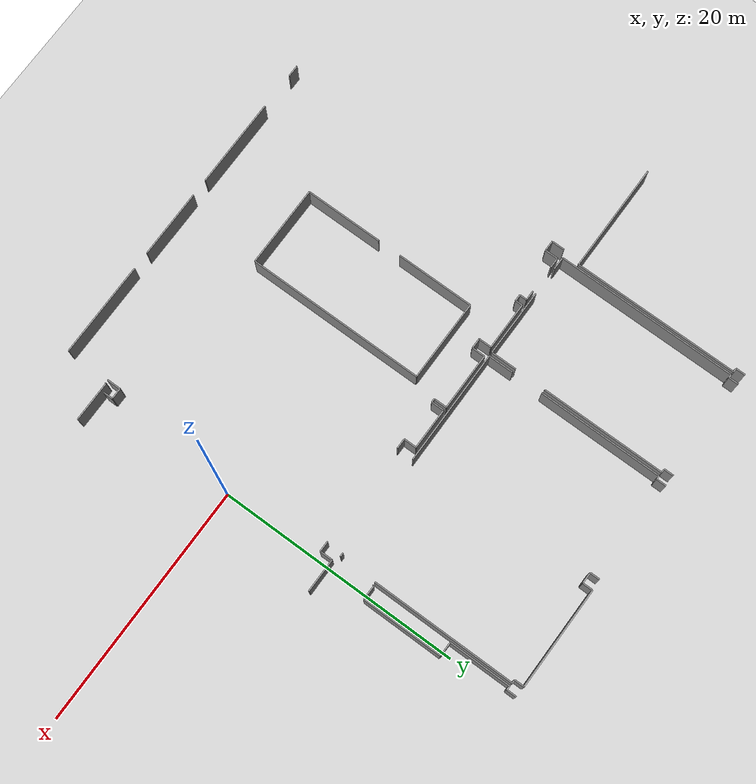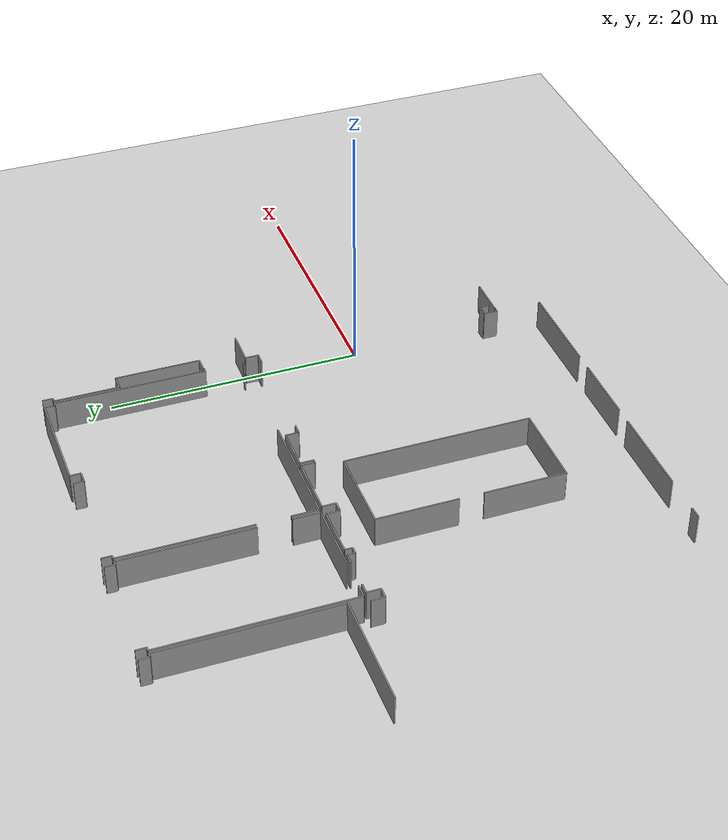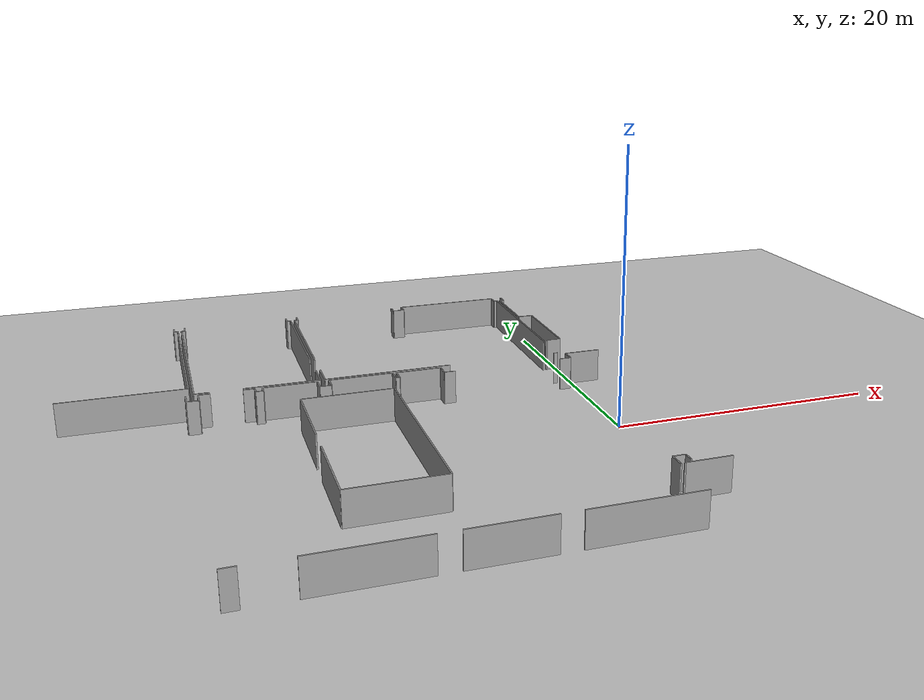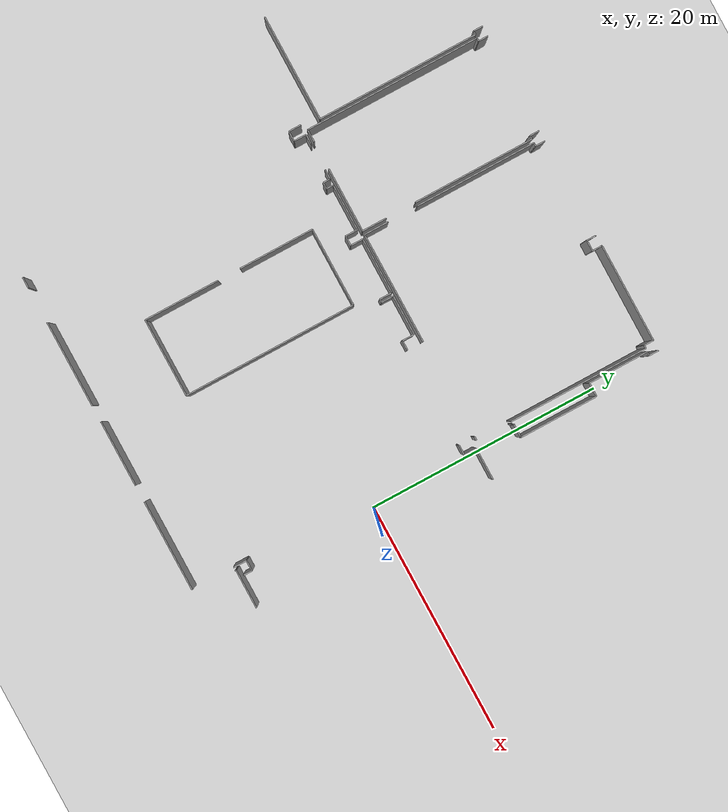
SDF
<sdf version="1.6">
 <world name="default">
  <model name="ground_plane">
   <static>1</static>
   <link name="link">
    <collision name="collision">
     <geometry><plane><normal>0 0 1</normal><size>100 100</size></plane></geometry>
     <surface><friction><ode><mu>100</mu><mu2>50</mu2></ode></friction></surface>
    </collision>
    <visual name="visual">
     <cast_shadows>0</cast_shadows>
     <geometry><plane><normal>0 0 1</normal><size>100 100</size></plane></geometry>
     <material>
      <script><uri>file://media/materials/scripts/gazebo.material</uri><name>Gazebo/Grey</name></script>
     </material>
    </visual>
   </link>
  </model>
  <model name="50045366">
   <static>1</static>
   <link name="Wall_24">
    <collision name="Wall_24_Collision">
     <geometry><box><size>0.805781712413 0.1 2.5</size></box></geometry>
     <pose>0.402890856207 0 1.25 0 0 0</pose>
    </collision>
    <visual name="Wall_24_Visual">
     <pose>0.402890856207 0 1.25 0 0 0</pose>
     <geometry><box><size>0.805781712413 0.1 2.5</size></box></geometry>
     <material>
      <script><uri>file://media/materials/scripts/gazebo.material</uri><name>Gazebo/Grey</name></script>
      <ambient>1 1 1 1</ambient>
     </material>
    </visual>
    <pose>25.0725889421 -0.0480115837472 0 0 0 -1.57079632679</pose>
   </link>
   <link name="Wall_25">
    <collision name="Wall_25_Collision">
     <geometry><box><size>0.3123293239 0.1 2.5</size></box></geometry>
     <pose>0.15616466195 0 1.25 0 0 0</pose>
    </collision>
    <visual name="Wall_25_Visual">
     <pose>0.15616466195 0 1.25 0 0 0</pose>
     <geometry><box><size>0.3123293239 0.1 2.5</size></box></geometry>
     <material>
      <script><uri>file://media/materials/scripts/gazebo.material</uri><name>Gazebo/Grey</name></script>
      <ambient>1 1 1 1</ambient>
     </material>
    </visual>
    <pose>25.0725889421 -0.85379329616 0 0 0 0.0</pose>
   </link>
   <link name="Wall_26">
    <collision name="Wall_26_Collision">
     <geometry><box><size>13.7253432574 0.1 2.5</size></box></geometry>
     <pose>6.86267162871 0 1.25 0 0 0</pose>
    </collision>
    <visual name="Wall_26_Visual">
     <pose>6.86267162871 0 1.25 0 0 0</pose>
     <geometry><box><size>13.7253432574 0.1 2.5</size></box></geometry>
     <material>
      <script><uri>file://media/materials/scripts/gazebo.material</uri><name>Gazebo/Grey</name></script>
      <ambient>1 1 1 1</ambient>
     </material>
    </visual>
    <pose>25.384918266 -0.85379329616 0 0 0 -1.57079632679</pose>
   </link>
   <link name="Wall_27">
    <collision name="Wall_27_Collision">
     <geometry><box><size>8.99785345036 0.1 2.5</size></box></geometry>
     <pose>4.49892672518 0 1.25 0 0 0</pose>
    </collision>
    <visual name="Wall_27_Visual">
     <pose>4.49892672518 0 1.25 0 0 0</pose>
     <geometry><box><size>8.99785345036 0.1 2.5</size></box></geometry>
     <material>
      <script><uri>file://media/materials/scripts/gazebo.material</uri><name>Gazebo/Grey</name></script>
      <ambient>1 1 1 1</ambient>
     </material>
    </visual>
    <pose>25.384918266 -14.5791365536 0 0 0 3.14159265359</pose>
   </link>
   <link name="Wall_46">
    <collision name="Wall_46_Collision">
     <geometry><box><size>1.05968424128 0.1 2.5</size></box></geometry>
     <pose>0.529842120639 0 1.25 0 0 0</pose>
    </collision>
    <visual name="Wall_46_Visual">
     <pose>0.529842120639 0 1.25 0 0 0</pose>
     <geometry><box><size>1.05968424128 0.1 2.5</size></box></geometry>
     <material>
      <script><uri>file://media/materials/scripts/gazebo.material</uri><name>Gazebo/Grey</name></script>
      <ambient>1 1 1 1</ambient>
     </material>
    </visual>
    <pose>25.0827501238 -16.1087754506 0 0 0 -1.57079632679</pose>
   </link>
   <link name="Wall_47">
    <collision name="Wall_47_Collision">
     <geometry><box><size>0.851125985952 0.1 2.5</size></box></geometry>
     <pose>0.425562992976 0 1.25 0 0 0</pose>
    </collision>
    <visual name="Wall_47_Visual">
     <pose>0.425562992976 0 1.25 0 0 0</pose>
     <geometry><box><size>0.851125985952 0.1 2.5</size></box></geometry>
     <material>
      <script><uri>file://media/materials/scripts/gazebo.material</uri><name>Gazebo/Grey</name></script>
      <ambient>1 1 1 1</ambient>
     </material>
    </visual>
    <pose>25.0827501238 -17.1684596919 0 0 0 0.0</pose>
   </link>
   <link name="Wall_48">
    <collision name="Wall_48_Collision">
     <geometry><box><size>1.06527289124 0.1 2.5</size></box></geometry>
     <pose>0.532636445619 0 1.25 0 0 0</pose>
    </collision>
    <visual name="Wall_48_Visual">
     <pose>0.532636445619 0 1.25 0 0 0</pose>
     <geometry><box><size>1.06527289124 0.1 2.5</size></box></geometry>
     <material>
      <script><uri>file://media/materials/scripts/gazebo.material</uri><name>Gazebo/Grey</name></script>
      <ambient>1 1 1 1</ambient>
     </material>
    </visual>
    <pose>25.9338761098 -17.1684596919 0 0 0 1.57079632679</pose>
   </link>
   <link name="Wall_49">
    <collision name="Wall_49_Collision">
     <geometry><box><size>0.836900331509 0.1 2.5</size></box></geometry>
     <pose>0.418450165754 0 1.25 0 0 0</pose>
    </collision>
    <visual name="Wall_49_Visual">
     <pose>0.418450165754 0 1.25 0 0 0</pose>
     <geometry><box><size>0.836900331509 0.1 2.5</size></box></geometry>
     <material>
      <script><uri>file://media/materials/scripts/gazebo.material</uri><name>Gazebo/Grey</name></script>
      <ambient>1 1 1 1</ambient>
     </material>
    </visual>
    <pose>25.9338761098 -16.1031868006 0 0 0 0.0</pose>
   </link>
   <link name="Wall_50">
    <collision name="Wall_50_Collision">
     <geometry><box><size>0.811751406689 0.1 2.5</size></box></geometry>
     <pose>0.405875703344 0 1.25 0 0 0</pose>
    </collision>
    <visual name="Wall_50_Visual">
     <pose>0.405875703344 0 1.25 0 0 0</pose>
     <geometry><box><size>0.811751406689 0.1 2.5</size></box></geometry>
     <material>
      <script><uri>file://media/materials/scripts/gazebo.material</uri><name>Gazebo/Grey</name></script>
      <ambient>1 1 1 1</ambient>
     </material>
    </visual>
    <pose>29.0405304137 -16.1031868006 0 0 0 0.0</pose>
   </link>
   <link name="Wall_51">
    <collision name="Wall_51_Collision">
     <geometry><box><size>0.610941052444 0.1 2.5</size></box></geometry>
     <pose>0.305470526222 0 1.25 0 0 0</pose>
    </collision>
    <visual name="Wall_51_Visual">
     <pose>0.305470526222 0 1.25 0 0 0</pose>
     <geometry><box><size>0.610941052444 0.1 2.5</size></box></geometry>
     <material>
      <script><uri>file://media/materials/scripts/gazebo.material</uri><name>Gazebo/Grey</name></script>
      <ambient>1 1 1 1</ambient>
     </material>
    </visual>
    <pose>29.8522818204 -16.1031868006 0 0 0 -1.57079632679</pose>
   </link>
   <link name="Wall_52">
    <collision name="Wall_52_Collision">
     <geometry><box><size>0.534859204125 0.1 2.5</size></box></geometry>
     <pose>0.267429602063 0 1.25 0 0 0</pose>
    </collision>
    <visual name="Wall_52_Visual">
     <pose>0.267429602063 0 1.25 0 0 0</pose>
     <geometry><box><size>0.534859204125 0.1 2.5</size></box></geometry>
     <material>
      <script><uri>file://media/materials/scripts/gazebo.material</uri><name>Gazebo/Grey</name></script>
      <ambient>1 1 1 1</ambient>
     </material>
    </visual>
    <pose>29.8522818204 -16.7141278531 0 0 0 0.0</pose>
   </link>
   <link name="Wall_53">
    <collision name="Wall_53_Collision">
     <geometry><box><size>0.596842412773 0.1 2.5</size></box></geometry>
     <pose>0.298421206386 0 1.25 0 0 0</pose>
    </collision>
    <visual name="Wall_53_Visual">
     <pose>0.298421206386 0 1.25 0 0 0</pose>
     <geometry><box><size>0.596842412773 0.1 2.5</size></box></geometry>
     <material>
      <script><uri>file://media/materials/scripts/gazebo.material</uri><name>Gazebo/Grey</name></script>
      <ambient>1 1 1 1</ambient>
     </material>
    </visual>
    <pose>30.3871410245 -16.7141278531 0 0 0 1.57079632679</pose>
   </link>
   <link name="Wall_54">
    <collision name="Wall_54_Collision">
     <geometry><box><size>3.93923613316 0.1 2.5</size></box></geometry>
     <pose>1.96961806658 0 1.25 0 0 0</pose>
    </collision>
    <visual name="Wall_54_Visual">
     <pose>1.96961806658 0 1.25 0 0 0</pose>
     <geometry><box><size>3.93923613316 0.1 2.5</size></box></geometry>
     <material>
      <script><uri>file://media/materials/scripts/gazebo.material</uri><name>Gazebo/Grey</name></script>
      <ambient>1 1 1 1</ambient>
     </material>
    </visual>
    <pose>30.3871410245 -16.1172854403 0 0 0 0.0</pose>
   </link>
   <link name="Wall_55">
    <collision name="Wall_55_Collision">
     <geometry><box><size>1.05523872426 0.1 2.5</size></box></geometry>
     <pose>0.527619362132 0 1.25 0 0 0</pose>
    </collision>
    <visual name="Wall_55_Visual">
     <pose>0.527619362132 0 1.25 0 0 0</pose>
     <geometry><box><size>1.05523872426 0.1 2.5</size></box></geometry>
     <material>
      <script><uri>file://media/materials/scripts/gazebo.material</uri><name>Gazebo/Grey</name></script>
      <ambient>1 1 1 1</ambient>
     </material>
    </visual>
    <pose>34.3263771577 -16.1172854403 0 0 0 -1.57079632679</pose>
   </link>
   <link name="Wall_56">
    <collision name="Wall_56_Collision">
     <geometry><box><size>0.83563018379 0.1 2.5</size></box></geometry>
     <pose>0.417815091895 0 1.25 0 0 0</pose>
    </collision>
    <visual name="Wall_56_Visual">
     <pose>0.417815091895 0 1.25 0 0 0</pose>
     <geometry><box><size>0.83563018379 0.1 2.5</size></box></geometry>
     <material>
      <script><uri>file://media/materials/scripts/gazebo.material</uri><name>Gazebo/Grey</name></script>
      <ambient>1 1 1 1</ambient>
     </material>
    </visual>
    <pose>34.3263771577 -17.1725241646 0 0 0 0.0</pose>
   </link>
   <link name="Wall_57">
    <collision name="Wall_57_Collision">
     <geometry><box><size>1.07429094004 0.1 2.5</size></box></geometry>
     <pose>0.537145470018 0 1.25 0 0 0</pose>
    </collision>
    <visual name="Wall_57_Visual">
     <pose>0.537145470018 0 1.25 0 0 0</pose>
     <geometry><box><size>1.07429094004 0.1 2.5</size></box></geometry>
     <material>
      <script><uri>file://media/materials/scripts/gazebo.material</uri><name>Gazebo/Grey</name></script>
      <ambient>1 1 1 1</ambient>
     </material>
    </visual>
    <pose>35.1620073415 -17.1725241646 0 0 0 1.57079632679</pose>
   </link>
   <link name="Wall_58">
    <collision name="Wall_58_Collision">
     <geometry><box><size>4.73396756043 0.1 2.5</size></box></geometry>
     <pose>2.36698378021 0 1.25 0 0 0</pose>
    </collision>
    <visual name="Wall_58_Visual">
     <pose>2.36698378021 0 1.25 0 0 0</pose>
     <geometry><box><size>4.73396756043 0.1 2.5</size></box></geometry>
     <material>
      <script><uri>file://media/materials/scripts/gazebo.material</uri><name>Gazebo/Grey</name></script>
      <ambient>1 1 1 1</ambient>
     </material>
    </visual>
    <pose>35.1620073415 -16.0982332245 0 0 0 0.0</pose>
   </link>
   <link name="Wall_59">
    <collision name="Wall_59_Collision">
     <geometry><box><size>1.07276676277 0.1 2.5</size></box></geometry>
     <pose>0.536383381387 0 1.25 0 0 0</pose>
    </collision>
    <visual name="Wall_59_Visual">
     <pose>0.536383381387 0 1.25 0 0 0</pose>
     <geometry><box><size>1.07276676277 0.1 2.5</size></box></geometry>
     <material>
      <script><uri>file://media/materials/scripts/gazebo.material</uri><name>Gazebo/Grey</name></script>
      <ambient>1 1 1 1</ambient>
     </material>
    </visual>
    <pose>39.8959749019 -16.0982332245 0 0 0 -1.57079632679</pose>
   </link>
   <link name="Wall_60">
    <collision name="Wall_60_Collision">
     <geometry><box><size>0.284005029785 0.1 2.5</size></box></geometry>
     <pose>0.142002514892 0 1.25 0 0 0</pose>
    </collision>
    <visual name="Wall_60_Visual">
     <pose>0.142002514892 0 1.25 0 0 0</pose>
     <geometry><box><size>0.284005029785 0.1 2.5</size></box></geometry>
     <material>
      <script><uri>file://media/materials/scripts/gazebo.material</uri><name>Gazebo/Grey</name></script>
      <ambient>1 1 1 1</ambient>
     </material>
    </visual>
    <pose>39.8959749019 -17.1709999873 0 0 0 0.0</pose>
   </link>
   <link name="Wall_61">
    <collision name="Wall_61_Collision">
     <geometry><box><size>1.04393440957 0.1 2.5</size></box></geometry>
     <pose>0.521967204786 0 1.25 0 0 0</pose>
    </collision>
    <visual name="Wall_61_Visual">
     <pose>0.521967204786 0 1.25 0 0 0</pose>
     <geometry><box><size>1.04393440957 0.1 2.5</size></box></geometry>
     <material>
      <script><uri>file://media/materials/scripts/gazebo.material</uri><name>Gazebo/Grey</name></script>
      <ambient>1 1 1 1</ambient>
     </material>
    </visual>
    <pose>40.1799799317 -17.1709999873 0 0 0 1.57079632679</pose>
   </link>
   <link name="Wall_62">
    <collision name="Wall_62_Collision">
     <geometry><box><size>3.38837306779 0.1 2.5</size></box></geometry>
     <pose>1.69418653389 0 1.25 0 0 0</pose>
    </collision>
    <visual name="Wall_62_Visual">
     <pose>1.69418653389 0 1.25 0 0 0</pose>
     <geometry><box><size>3.38837306779 0.1 2.5</size></box></geometry>
     <material>
      <script><uri>file://media/materials/scripts/gazebo.material</uri><name>Gazebo/Grey</name></script>
      <ambient>1 1 1 1</ambient>
     </material>
    </visual>
    <pose>40.1799799317 -16.1270655777 0 0 0 0.0</pose>
   </link>
   <link name="Wall_63">
    <collision name="Wall_63_Collision">
     <geometry><box><size>1.03593247895 0.1 2.5</size></box></geometry>
     <pose>0.517966239474 0 1.25 0 0 0</pose>
    </collision>
    <visual name="Wall_63_Visual">
     <pose>0.517966239474 0 1.25 0 0 0</pose>
     <geometry><box><size>1.03593247895 0.1 2.5</size></box></geometry>
     <material>
      <script><uri>file://media/materials/scripts/gazebo.material</uri><name>Gazebo/Grey</name></script>
      <ambient>1 1 1 1</ambient>
     </material>
    </visual>
    <pose>43.5683529995 -16.1270655777 0 0 0 -1.57079632679</pose>
   </link>
   <link name="Wall_64">
    <collision name="Wall_64_Collision">
     <geometry><box><size>0.851125985952 0.1 2.5</size></box></geometry>
     <pose>0.425562992976 0 1.25 0 0 0</pose>
    </collision>
    <visual name="Wall_64_Visual">
     <pose>0.425562992976 0 1.25 0 0 0</pose>
     <geometry><box><size>0.851125985952 0.1 2.5</size></box></geometry>
     <material>
      <script><uri>file://media/materials/scripts/gazebo.material</uri><name>Gazebo/Grey</name></script>
      <ambient>1 1 1 1</ambient>
     </material>
    </visual>
    <pose>43.5683529995 -17.1629980567 0 0 0 0.0</pose>
   </link>
   <link name="Wall_65">
    <collision name="Wall_65_Collision">
     <geometry><box><size>0.852523148442 0.1 2.5</size></box></geometry>
     <pose>0.426261574221 0 1.25 0 0 0</pose>
    </collision>
    <visual name="Wall_65_Visual">
     <pose>0.426261574221 0 1.25 0 0 0</pose>
     <geometry><box><size>0.852523148442 0.1 2.5</size></box></geometry>
     <material>
      <script><uri>file://media/materials/scripts/gazebo.material</uri><name>Gazebo/Grey</name></script>
      <ambient>1 1 1 1</ambient>
     </material>
    </visual>
    <pose>52.7907685664 -17.1629980567 0 0 0 0.0</pose>
   </link>
   <link name="Wall_66">
    <collision name="Wall_66_Collision">
     <geometry><box><size>1.04520455729 0.1 2.5</size></box></geometry>
     <pose>0.522602278645 0 1.25 0 0 0</pose>
    </collision>
    <visual name="Wall_66_Visual">
     <pose>0.522602278645 0 1.25 0 0 0</pose>
     <geometry><box><size>1.04520455729 0.1 2.5</size></box></geometry>
     <material>
      <script><uri>file://media/materials/scripts/gazebo.material</uri><name>Gazebo/Grey</name></script>
      <ambient>1 1 1 1</ambient>
     </material>
    </visual>
    <pose>53.6432917148 -17.1629980567 0 0 0 1.57079632679</pose>
   </link>
   <link name="Wall_67">
    <collision name="Wall_67_Collision">
     <geometry><box><size>2.74148683492 0.1 2.5</size></box></geometry>
     <pose>1.37074341746 0 1.25 0 0 0</pose>
    </collision>
    <visual name="Wall_67_Visual">
     <pose>1.37074341746 0 1.25 0 0 0</pose>
     <geometry><box><size>2.74148683492 0.1 2.5</size></box></geometry>
     <material>
      <script><uri>file://media/materials/scripts/gazebo.material</uri><name>Gazebo/Grey</name></script>
      <ambient>1 1 1 1</ambient>
     </material>
    </visual>
    <pose>53.6432917148 -16.1177934994 0 0 0 0.0</pose>
   </link>
   <link name="Wall_84">
    <collision name="Wall_84_Collision">
     <geometry><box><size>0.750022227585 0.1 2.5</size></box></geometry>
     <pose>0.375011113793 0 1.25 0 0 0</pose>
    </collision>
    <visual name="Wall_84_Visual">
     <pose>0.375011113793 0 1.25 0 0 0</pose>
     <geometry><box><size>0.750022227585 0.1 2.5</size></box></geometry>
     <material>
      <script><uri>file://media/materials/scripts/gazebo.material</uri><name>Gazebo/Grey</name></script>
      <ambient>1 1 1 1</ambient>
     </material>
    </visual>
    <pose>53.6918113577 -36.6835172931 0 0 0 1.57079632679</pose>
   </link>
   <link name="Wall_85">
    <collision name="Wall_85_Collision">
     <geometry><box><size>0.899010554928 0.1 2.5</size></box></geometry>
     <pose>0.449505277464 0 1.25 0 0 0</pose>
    </collision>
    <visual name="Wall_85_Visual">
     <pose>0.449505277464 0 1.25 0 0 0</pose>
     <geometry><box><size>0.899010554928 0.1 2.5</size></box></geometry>
     <material>
      <script><uri>file://media/materials/scripts/gazebo.material</uri><name>Gazebo/Grey</name></script>
      <ambient>1 1 1 1</ambient>
     </material>
    </visual>
    <pose>53.6918113577 -35.9334950655 0 0 0 3.14159265359</pose>
   </link>
   <link name="Wall_86">
    <collision name="Wall_86_Collision">
     <geometry><box><size>1.15354815765 0.1 2.5</size></box></geometry>
     <pose>0.576774078825 0 1.25 0 0 0</pose>
    </collision>
    <visual name="Wall_86_Visual">
     <pose>0.576774078825 0 1.25 0 0 0</pose>
     <geometry><box><size>1.15354815765 0.1 2.5</size></box></geometry>
     <material>
      <script><uri>file://media/materials/scripts/gazebo.material</uri><name>Gazebo/Grey</name></script>
      <ambient>1 1 1 1</ambient>
     </material>
    </visual>
    <pose>52.7928008027 -35.9334950655 0 0 0 -1.57079632679</pose>
   </link>
   <link name="Wall_87">
    <collision name="Wall_87_Collision">
     <geometry><box><size>7.7857514829 0.1 2.5</size></box></geometry>
     <pose>3.89287574145 0 1.25 0 0 0</pose>
    </collision>
    <visual name="Wall_87_Visual">
     <pose>3.89287574145 0 1.25 0 0 0</pose>
     <geometry><box><size>7.7857514829 0.1 2.5</size></box></geometry>
     <material>
      <script><uri>file://media/materials/scripts/gazebo.material</uri><name>Gazebo/Grey</name></script>
      <ambient>1 1 1 1</ambient>
     </material>
    </visual>
    <pose>52.7928008027 -40.7215709187 0 0 0 3.14159265359</pose>
   </link>
   <link name="Wall_88">
    <collision name="Wall_88_Collision">
     <geometry><box><size>5.6143069439 0.1 2.5</size></box></geometry>
     <pose>2.80715347195 0 1.25 0 0 0</pose>
    </collision>
    <visual name="Wall_88_Visual">
     <pose>2.80715347195 0 1.25 0 0 0</pose>
     <geometry><box><size>5.6143069439 0.1 2.5</size></box></geometry>
     <material>
      <script><uri>file://media/materials/scripts/gazebo.material</uri><name>Gazebo/Grey</name></script>
      <ambient>1 1 1 1</ambient>
     </material>
    </visual>
    <pose>43.559715995 -40.7215709187 0 0 0 3.14159265359</pose>
   </link>
   <link name="Wall_89">
    <collision name="Wall_89_Collision">
     <geometry><box><size>7.35199603714 0.1 2.5</size></box></geometry>
     <pose>3.67599801857 0 1.25 0 0 0</pose>
    </collision>
    <visual name="Wall_89_Visual">
     <pose>3.67599801857 0 1.25 0 0 0</pose>
     <geometry><box><size>7.35199603714 0.1 2.5</size></box></geometry>
     <material>
      <script><uri>file://media/materials/scripts/gazebo.material</uri><name>Gazebo/Grey</name></script>
      <ambient>1 1 1 1</ambient>
     </material>
    </visual>
    <pose>36.5250028578 -40.7215709187 0 0 0 3.14159265359</pose>
   </link>
   <link name="Wall_90">
    <collision name="Wall_90_Collision">
     <geometry><box><size>0.965312265817 0.1 2.5</size></box></geometry>
     <pose>0.482656132908 0 1.25 0 0 0</pose>
    </collision>
    <visual name="Wall_90_Visual">
     <pose>0.482656132908 0 1.25 0 0 0</pose>
     <geometry><box><size>0.965312265817 0.1 2.5</size></box></geometry>
     <material>
      <script><uri>file://media/materials/scripts/gazebo.material</uri><name>Gazebo/Grey</name></script>
      <ambient>1 1 1 1</ambient>
     </material>
    </visual>
    <pose>26.1462448083 -40.7215709187 0 0 0 3.14159265359</pose>
   </link>
   <link name="Wall_101">
    <collision name="Wall_101_Collision">
     <geometry><box><size>6.42694745399 0.1 2.5</size></box></geometry>
     <pose>3.21347372699 0 1.25 0 0 0</pose>
    </collision>
    <visual name="Wall_101_Visual">
     <pose>3.21347372699 0 1.25 0 0 0</pose>
     <geometry><box><size>6.42694745399 0.1 2.5</size></box></geometry>
     <material>
      <script><uri>file://media/materials/scripts/gazebo.material</uri><name>Gazebo/Grey</name></script>
      <ambient>1 1 1 1</ambient>
     </material>
    </visual>
    <pose>32.6316190573 -33.9408873252 0 0 0 1.57079632679</pose>
   </link>
   <link name="Wall_102">
    <collision name="Wall_102_Collision">
     <geometry><box><size>6.40853031208 0.1 2.5</size></box></geometry>
     <pose>3.20426515604 0 1.25 0 0 0</pose>
    </collision>
    <visual name="Wall_102_Visual">
     <pose>3.20426515604 0 1.25 0 0 0</pose>
     <geometry><box><size>6.40853031208 0.1 2.5</size></box></geometry>
     <material>
      <script><uri>file://media/materials/scripts/gazebo.material</uri><name>Gazebo/Grey</name></script>
      <ambient>1 1 1 1</ambient>
     </material>
    </visual>
    <pose>32.6316190573 -25.5922063736 0 0 0 1.57079632679</pose>
   </link>
   <link name="Wall_103">
    <collision name="Wall_103_Collision">
     <geometry><box><size>6.67983386468 0.1 2.5</size></box></geometry>
     <pose>3.33991693234 0 1.25 0 0 0</pose>
    </collision>
    <visual name="Wall_103_Visual">
     <pose>3.33991693234 0 1.25 0 0 0</pose>
     <geometry><box><size>6.67983386468 0.1 2.5</size></box></geometry>
     <material>
      <script><uri>file://media/materials/scripts/gazebo.material</uri><name>Gazebo/Grey</name></script>
      <ambient>1 1 1 1</ambient>
     </material>
    </visual>
    <pose>32.6316190573 -19.1836760615 0 0 0 0.0</pose>
   </link>
   <link name="Wall_104">
    <collision name="Wall_104_Collision">
     <geometry><box><size>14.7478121706 0.1 2.5</size></box></geometry>
     <pose>7.37390608528 0 1.25 0 0 0</pose>
    </collision>
    <visual name="Wall_104_Visual">
     <pose>7.37390608528 0 1.25 0 0 0</pose>
     <geometry><box><size>14.7478121706 0.1 2.5</size></box></geometry>
     <material>
      <script><uri>file://media/materials/scripts/gazebo.material</uri><name>Gazebo/Grey</name></script>
      <ambient>1 1 1 1</ambient>
     </material>
    </visual>
    <pose>39.311452922 -19.1836760615 0 0 0 -1.57079632679</pose>
   </link>
   <link name="Wall_105">
    <collision name="Wall_105_Collision">
     <geometry><box><size>6.67984047734 0.1 2.5</size></box></geometry>
     <pose>3.33992023867 0 1.25 0 0 0</pose>
    </collision>
    <visual name="Wall_105_Visual">
     <pose>3.33992023867 0 1.25 0 0 0</pose>
     <geometry><box><size>6.67984047734 0.1 2.5</size></box></geometry>
     <material>
      <script><uri>file://media/materials/scripts/gazebo.material</uri><name>Gazebo/Grey</name></script>
      <ambient>1 1 1 1</ambient>
     </material>
    </visual>
    <pose>39.311452922 -33.9314882321 0 0 0 -3.14018556966</pose>
   </link>
   <link name="Wall_169">
    <collision name="Wall_169_Collision">
     <geometry><box><size>14.9444310373 0.1 2.5</size></box></geometry>
     <pose>7.47221551866 0 1.25 0 0 0</pose>
    </collision>
    <visual name="Wall_169_Visual">
     <pose>7.47221551866 0 1.25 0 0 0</pose>
     <geometry><box><size>14.9444310373 0.1 2.5</size></box></geometry>
     <material>
      <script><uri>file://media/materials/scripts/gazebo.material</uri><name>Gazebo/Grey</name></script>
      <ambient>1 1 1 1</ambient>
     </material>
    </visual>
    <pose>25.6623185276 -15.8180386379 0 0 0 1.57079632679</pose>
   </link>
   <link name="Wall_170">
    <collision name="Wall_170_Collision">
     <geometry><box><size>0.277654291194 0.1 2.5</size></box></geometry>
     <pose>0.138827145597 0 1.25 0 0 0</pose>
    </collision>
    <visual name="Wall_170_Visual">
     <pose>0.138827145597 0 1.25 0 0 0</pose>
     <geometry><box><size>0.277654291194 0.1 2.5</size></box></geometry>
     <material>
      <script><uri>file://media/materials/scripts/gazebo.material</uri><name>Gazebo/Grey</name></script>
      <ambient>1 1 1 1</ambient>
     </material>
    </visual>
    <pose>25.6623185276 -0.873607600564 0 0 0 0.0</pose>
   </link>
   <link name="Wall_171">
    <collision name="Wall_171_Collision">
     <geometry><box><size>0.808194993078 0.1 2.5</size></box></geometry>
     <pose>0.404097496539 0 1.25 0 0 0</pose>
    </collision>
    <visual name="Wall_171_Visual">
     <pose>0.404097496539 0 1.25 0 0 0</pose>
     <geometry><box><size>0.808194993078 0.1 2.5</size></box></geometry>
     <material>
      <script><uri>file://media/materials/scripts/gazebo.material</uri><name>Gazebo/Grey</name></script>
      <ambient>1 1 1 1</ambient>
     </material>
    </visual>
    <pose>25.9399728188 -0.873607600564 0 0 0 1.57079632679</pose>
   </link>
   <link name="Wall_172">
    <collision name="Wall_172_Collision">
     <geometry><box><size>0.805400668098 0.1 2.5</size></box></geometry>
     <pose>0.402700334049 0 1.25 0 0 0</pose>
    </collision>
    <visual name="Wall_172_Visual">
     <pose>0.402700334049 0 1.25 0 0 0</pose>
     <geometry><box><size>0.805400668098 0.1 2.5</size></box></geometry>
     <material>
      <script><uri>file://media/materials/scripts/gazebo.material</uri><name>Gazebo/Grey</name></script>
      <ambient>1 1 1 1</ambient>
     </material>
    </visual>
    <pose>34.297798834 -0.0654126074863 0 0 0 -1.57079632679</pose>
   </link>
   <link name="Wall_173">
    <collision name="Wall_173_Collision">
     <geometry><box><size>0.305597540994 0.1 2.5</size></box></geometry>
     <pose>0.152798770497 0 1.25 0 0 0</pose>
    </collision>
    <visual name="Wall_173_Visual">
     <pose>0.152798770497 0 1.25 0 0 0</pose>
     <geometry><box><size>0.305597540994 0.1 2.5</size></box></geometry>
     <material>
      <script><uri>file://media/materials/scripts/gazebo.material</uri><name>Gazebo/Grey</name></script>
      <ambient>1 1 1 1</ambient>
     </material>
    </visual>
    <pose>34.297798834 -0.870813275584 0 0 0 0.0</pose>
   </link>
   <link name="Wall_174">
    <collision name="Wall_174_Collision">
     <geometry><box><size>10.2707954935 0.1 2.5</size></box></geometry>
     <pose>5.13539774676 0 1.25 0 0 0</pose>
    </collision>
    <visual name="Wall_174_Visual">
     <pose>5.13539774676 0 1.25 0 0 0</pose>
     <geometry><box><size>10.2707954935 0.1 2.5</size></box></geometry>
     <material>
      <script><uri>file://media/materials/scripts/gazebo.material</uri><name>Gazebo/Grey</name></script>
      <ambient>1 1 1 1</ambient>
     </material>
    </visual>
    <pose>34.603396375 -0.870813275584 0 0 0 -1.57079632679</pose>
   </link>
   <link name="Wall_175">
    <collision name="Wall_175_Collision">
     <geometry><box><size>2.10946133035 0.1 2.5</size></box></geometry>
     <pose>1.05473066518 0 1.25 0 0 0</pose>
    </collision>
    <visual name="Wall_175_Visual">
     <pose>1.05473066518 0 1.25 0 0 0</pose>
     <geometry><box><size>2.10946133035 0.1 2.5</size></box></geometry>
     <material>
      <script><uri>file://media/materials/scripts/gazebo.material</uri><name>Gazebo/Grey</name></script>
      <ambient>1 1 1 1</ambient>
     </material>
    </visual>
    <pose>34.603396375 -13.7191195336 0 0 0 -1.57079632679</pose>
   </link>
   <link name="Wall_176">
    <collision name="Wall_176_Collision">
     <geometry><box><size>5.52209421956 0.1 2.5</size></box></geometry>
     <pose>2.76104710978 0 1.25 0 0 0</pose>
    </collision>
    <visual name="Wall_176_Visual">
     <pose>2.76104710978 0 1.25 0 0 0</pose>
     <geometry><box><size>5.52209421956 0.1 2.5</size></box></geometry>
     <material>
      <script><uri>file://media/materials/scripts/gazebo.material</uri><name>Gazebo/Grey</name></script>
      <ambient>1 1 1 1</ambient>
     </material>
    </visual>
    <pose>34.603396375 -15.828580864 0 0 0 3.14159265359</pose>
   </link>
   <link name="Wall_177">
    <collision name="Wall_177_Collision">
     <geometry><box><size>1.07332659604 0.1 2.5</size></box></geometry>
     <pose>0.536663298021 0 1.25 0 0 0</pose>
    </collision>
    <visual name="Wall_177_Visual">
     <pose>0.536663298021 0 1.25 0 0 0</pose>
     <geometry><box><size>1.07332659604 0.1 2.5</size></box></geometry>
     <material>
      <script><uri>file://media/materials/scripts/gazebo.material</uri><name>Gazebo/Grey</name></script>
      <ambient>1 1 1 1</ambient>
     </material>
    </visual>
    <pose>26.7355933495 -15.828580864 0 0 0 3.13177048426</pose>
   </link>
   <link name="Wall_178">
    <collision name="Wall_178_Collision">
     <geometry><box><size>2.08113703624 0.1 2.5</size></box></geometry>
     <pose>1.04056851812 0 1.25 0 0 0</pose>
    </collision>
    <visual name="Wall_178_Visual">
     <pose>1.04056851812 0 1.25 0 0 0</pose>
     <geometry><box><size>2.08113703624 0.1 2.5</size></box></geometry>
     <material>
      <script><uri>file://media/materials/scripts/gazebo.material</uri><name>Gazebo/Grey</name></script>
      <ambient>1 1 1 1</ambient>
     </material>
    </visual>
    <pose>34.9229655409 -15.8247704208 0 0 0 1.57079632679</pose>
   </link>
   <link name="Wall_179">
    <collision name="Wall_179_Collision">
     <geometry><box><size>10.295563374 0.1 2.5</size></box></geometry>
     <pose>5.14778168701 0 1.25 0 0 0</pose>
    </collision>
    <visual name="Wall_179_Visual">
     <pose>5.14778168701 0 1.25 0 0 0</pose>
     <geometry><box><size>10.295563374 0.1 2.5</size></box></geometry>
     <material>
      <script><uri>file://media/materials/scripts/gazebo.material</uri><name>Gazebo/Grey</name></script>
      <ambient>1 1 1 1</ambient>
     </material>
    </visual>
    <pose>34.9229655409 -11.1668847087 0 0 0 1.57079632679</pose>
   </link>
   <link name="Wall_180">
    <collision name="Wall_180_Collision">
     <geometry><box><size>0.294039196759 0.1 2.5</size></box></geometry>
     <pose>0.147019598379 0 1.25 0 0 0</pose>
    </collision>
    <visual name="Wall_180_Visual">
     <pose>0.147019598379 0 1.25 0 0 0</pose>
     <geometry><box><size>0.294039196759 0.1 2.5</size></box></geometry>
     <material>
      <script><uri>file://media/materials/scripts/gazebo.material</uri><name>Gazebo/Grey</name></script>
      <ambient>1 1 1 1</ambient>
     </material>
    </visual>
    <pose>34.9229655409 -0.871321334671 0 0 0 0.0</pose>
   </link>
   <link name="Wall_181">
    <collision name="Wall_181_Collision">
     <geometry><box><size>0.803368431749 0.1 2.5</size></box></geometry>
     <pose>0.401684215874 0 1.25 0 0 0</pose>
    </collision>
    <visual name="Wall_181_Visual">
     <pose>0.401684215874 0 1.25 0 0 0</pose>
     <geometry><box><size>0.803368431749 0.1 2.5</size></box></geometry>
     <material>
      <script><uri>file://media/materials/scripts/gazebo.material</uri><name>Gazebo/Grey</name></script>
      <ambient>1 1 1 1</ambient>
     </material>
    </visual>
    <pose>35.2170047377 -0.871321334671 0 0 0 1.57079632679</pose>
   </link>
   <link name="Wall_182">
    <collision name="Wall_182_Collision">
     <geometry><box><size>0.801082165856 0.1 2.5</size></box></geometry>
     <pose>0.400541082928 0 1.25 0 0 0</pose>
    </collision>
    <visual name="Wall_182_Visual">
     <pose>0.400541082928 0 1.25 0 0 0</pose>
     <geometry><box><size>0.801082165856 0.1 2.5</size></box></geometry>
     <material>
      <script><uri>file://media/materials/scripts/gazebo.material</uri><name>Gazebo/Grey</name></script>
      <ambient>1 1 1 1</ambient>
     </material>
    </visual>
    <pose>43.5456173553 -0.0679529029226 0 0 0 -1.57079632679</pose>
   </link>
   <link name="Wall_183">
    <collision name="Wall_183_Collision">
     <geometry><box><size>0.918697844559 0.1 2.5</size></box></geometry>
     <pose>0.45934892228 0 1.25 0 0 0</pose>
    </collision>
    <visual name="Wall_183_Visual">
     <pose>0.45934892228 0 1.25 0 0 0</pose>
     <geometry><box><size>0.918697844559 0.1 2.5</size></box></geometry>
     <material>
      <script><uri>file://media/materials/scripts/gazebo.material</uri><name>Gazebo/Grey</name></script>
      <ambient>1 1 1 1</ambient>
     </material>
    </visual>
    <pose>43.5456173553 -0.869035068779 0 0 0 0.0</pose>
   </link>
   <link name="Wall_184">
    <collision name="Wall_184_Collision">
     <geometry><box><size>0.840202715576 0.1 2.5</size></box></geometry>
     <pose>0.420101357788 0 1.25 0 0 0</pose>
    </collision>
    <visual name="Wall_184_Visual">
     <pose>0.420101357788 0 1.25 0 0 0</pose>
     <geometry><box><size>0.840202715576 0.1 2.5</size></box></geometry>
     <material>
      <script><uri>file://media/materials/scripts/gazebo.material</uri><name>Gazebo/Grey</name></script>
      <ambient>1 1 1 1</ambient>
     </material>
    </visual>
    <pose>44.4643151999 -0.869035068779 0 0 0 1.57079632679</pose>
   </link>
   <link name="Wall_185">
    <collision name="Wall_185_Collision">
     <geometry><box><size>8.35503169019 0.1 2.5</size></box></geometry>
     <pose>4.17751584509 0 1.25 0 0 0</pose>
    </collision>
    <visual name="Wall_185_Visual">
     <pose>4.17751584509 0 1.25 0 0 0</pose>
     <geometry><box><size>8.35503169019 0.1 2.5</size></box></geometry>
     <material>
      <script><uri>file://media/materials/scripts/gazebo.material</uri><name>Gazebo/Grey</name></script>
      <ambient>1 1 1 1</ambient>
     </material>
    </visual>
    <pose>44.4643151999 -0.0288323532027 0 0 0 0.0</pose>
   </link>
   <link name="Wall_186">
    <collision name="Wall_186_Collision">
     <geometry><box><size>0.803368431749 0.1 2.5</size></box></geometry>
     <pose>0.401684215874 0 1.25 0 0 0</pose>
    </collision>
    <visual name="Wall_186_Visual">
     <pose>0.401684215874 0 1.25 0 0 0</pose>
     <geometry><box><size>0.803368431749 0.1 2.5</size></box></geometry>
     <material>
      <script><uri>file://media/materials/scripts/gazebo.material</uri><name>Gazebo/Grey</name></script>
      <ambient>1 1 1 1</ambient>
     </material>
    </visual>
    <pose>52.81934689 -0.0288323532027 0 0 0 -1.57079632679</pose>
   </link>
   <link name="Wall_187">
    <collision name="Wall_187_Collision">
     <geometry><box><size>0.28222682298 0.1 2.5</size></box></geometry>
     <pose>0.14111341149 0 1.25 0 0 0</pose>
    </collision>
    <visual name="Wall_187_Visual">
     <pose>0.14111341149 0 1.25 0 0 0</pose>
     <geometry><box><size>0.28222682298 0.1 2.5</size></box></geometry>
     <material>
      <script><uri>file://media/materials/scripts/gazebo.material</uri><name>Gazebo/Grey</name></script>
      <ambient>1 1 1 1</ambient>
     </material>
    </visual>
    <pose>52.81934689 -0.832200784951 0 0 0 0.0</pose>
   </link>
   <link name="Wall_188">
    <collision name="Wall_188_Collision">
     <geometry><box><size>11.9150017147 0.1 2.5</size></box></geometry>
     <pose>5.95750085735 0 1.25 0 0 0</pose>
    </collision>
    <visual name="Wall_188_Visual">
     <pose>5.95750085735 0 1.25 0 0 0</pose>
     <geometry><box><size>11.9150017147 0.1 2.5</size></box></geometry>
     <material>
      <script><uri>file://media/materials/scripts/gazebo.material</uri><name>Gazebo/Grey</name></script>
      <ambient>1 1 1 1</ambient>
     </material>
    </visual>
    <pose>53.101573713 -0.832200784951 0 0 0 -1.57079632679</pose>
   </link>
   <link name="Wall_189">
    <collision name="Wall_189_Collision">
     <geometry><box><size>0.307629777343 0.1 2.5</size></box></geometry>
     <pose>0.153814888672 0 1.25 0 0 0</pose>
    </collision>
    <visual name="Wall_189_Visual">
     <pose>0.153814888672 0 1.25 0 0 0</pose>
     <geometry><box><size>0.307629777343 0.1 2.5</size></box></geometry>
     <material>
      <script><uri>file://media/materials/scripts/gazebo.material</uri><name>Gazebo/Grey</name></script>
      <ambient>1 1 1 1</ambient>
     </material>
    </visual>
    <pose>53.101573713 -15.7892062847 0 0 0 3.14159265359</pose>
   </link>
   <link name="Wall_190">
    <collision name="Wall_190_Collision">
     <geometry><box><size>9.48387864955 0.1 2.5</size></box></geometry>
     <pose>4.74193932478 0 1.25 0 0 0</pose>
    </collision>
    <visual name="Wall_190_Visual">
     <pose>4.74193932478 0 1.25 0 0 0</pose>
     <geometry><box><size>9.48387864955 0.1 2.5</size></box></geometry>
     <material>
      <script><uri>file://media/materials/scripts/gazebo.material</uri><name>Gazebo/Grey</name></script>
      <ambient>1 1 1 1</ambient>
     </material>
    </visual>
    <pose>44.4067775082 -15.7892062847 0 0 0 -3.13784268791</pose>
   </link>
   <link name="Wall_191">
    <collision name="Wall_191_Collision">
     <geometry><box><size>0.105549275381 0.1 2.5</size></box></geometry>
     <pose>0.0527746376904 0 1.25 0 0 0</pose>
    </collision>
    <visual name="Wall_191_Visual">
     <pose>0.0527746376904 0 1.25 0 0 0</pose>
     <geometry><box><size>0.105549275381 0.1 2.5</size></box></geometry>
     <material>
      <script><uri>file://media/materials/scripts/gazebo.material</uri><name>Gazebo/Grey</name></script>
      <ambient>1 1 1 1</ambient>
     </material>
    </visual>
    <pose>53.3730042804 -12.7543153269 0 0 0 1.57079632679</pose>
   </link>
   <link name="Wall_192">
    <collision name="Wall_192_Collision">
     <geometry><box><size>1.16891694504 0.1 2.5</size></box></geometry>
     <pose>0.58445847252 0 1.25 0 0 0</pose>
    </collision>
    <visual name="Wall_192_Visual">
     <pose>0.58445847252 0 1.25 0 0 0</pose>
     <geometry><box><size>1.16891694504 0.1 2.5</size></box></geometry>
     <material>
      <script><uri>file://media/materials/scripts/gazebo.material</uri><name>Gazebo/Grey</name></script>
      <ambient>1 1 1 1</ambient>
     </material>
    </visual>
    <pose>53.3730042804 -12.6487660515 0 0 0 0.0</pose>
   </link>
   <link name="Wall_193">
    <collision name="Wall_193_Collision">
     <geometry><box><size>6.67488028858 0.1 2.5</size></box></geometry>
     <pose>3.33744014429 0 1.25 0 0 0</pose>
    </collision>
    <visual name="Wall_193_Visual">
     <pose>3.33744014429 0 1.25 0 0 0</pose>
     <geometry><box><size>6.67488028858 0.1 2.5</size></box></geometry>
     <material>
      <script><uri>file://media/materials/scripts/gazebo.material</uri><name>Gazebo/Grey</name></script>
      <ambient>1 1 1 1</ambient>
     </material>
    </visual>
    <pose>54.5419212254 -12.6487660515 0 0 0 1.57079632679</pose>
   </link>
   <link name="Wall_194">
    <collision name="Wall_194_Collision">
     <geometry><box><size>1.17171127002 0.1 2.5</size></box></geometry>
     <pose>0.58585563501 0 1.25 0 0 0</pose>
    </collision>
    <visual name="Wall_194_Visual">
     <pose>0.58585563501 0 1.25 0 0 0</pose>
     <geometry><box><size>1.17171127002 0.1 2.5</size></box></geometry>
     <material>
      <script><uri>file://media/materials/scripts/gazebo.material</uri><name>Gazebo/Grey</name></script>
      <ambient>1 1 1 1</ambient>
     </material>
    </visual>
    <pose>54.5419212254 -5.97388576291 0 0 0 3.14159265359</pose>
   </link>
   <link name="Wall_195">
    <collision name="Wall_195_Collision">
     <geometry><box><size>5.10561278277 0.1 2.5</size></box></geometry>
     <pose>2.55280639138 0 1.25 0 0 0</pose>
    </collision>
    <visual name="Wall_195_Visual">
     <pose>2.55280639138 0 1.25 0 0 0</pose>
     <geometry><box><size>5.10561278277 0.1 2.5</size></box></geometry>
     <material>
      <script><uri>file://media/materials/scripts/gazebo.material</uri><name>Gazebo/Grey</name></script>
      <ambient>1 1 1 1</ambient>
     </material>
    </visual>
    <pose>53.3702099554 -5.97388576291 0 0 0 1.57079632679</pose>
   </link>
   <link name="Wall_196">
    <collision name="Wall_196_Collision">
     <geometry><box><size>0.329603332868 0.1 2.5</size></box></geometry>
     <pose>0.164801666434 0 1.25 0 0 0</pose>
    </collision>
    <visual name="Wall_196_Visual">
     <pose>0.164801666434 0 1.25 0 0 0</pose>
     <geometry><box><size>0.329603332868 0.1 2.5</size></box></geometry>
     <material>
      <script><uri>file://media/materials/scripts/gazebo.material</uri><name>Gazebo/Grey</name></script>
      <ambient>1 1 1 1</ambient>
     </material>
    </visual>
    <pose>53.3702099554 -0.868272980148 0 0 0 0.0</pose>
   </link>
   <link name="Wall_197">
    <collision name="Wall_197_Collision">
     <geometry><box><size>0.813402598722 0.1 2.5</size></box></geometry>
     <pose>0.406701299361 0 1.25 0 0 0</pose>
    </collision>
    <visual name="Wall_197_Visual">
     <pose>0.406701299361 0 1.25 0 0 0</pose>
     <geometry><box><size>0.813402598722 0.1 2.5</size></box></geometry>
     <material>
      <script><uri>file://media/materials/scripts/gazebo.material</uri><name>Gazebo/Grey</name></script>
      <ambient>1 1 1 1</ambient>
     </material>
    </visual>
    <pose>53.6998132883 -0.868272980148 0 0 0 1.57079632679</pose>
   </link>
   <link name="Wall_223">
    <collision name="Wall_223_Collision">
     <geometry><box><size>0.0988174924744 0.1 2.5</size></box></geometry>
     <pose>0.0494087462372 0 1.25 0 0 0</pose>
    </collision>
    <visual name="Wall_223_Visual">
     <pose>0.0494087462372 0 1.25 0 0 0</pose>
     <geometry><box><size>0.0988174924744 0.1 2.5</size></box></geometry>
     <material>
      <script><uri>file://media/materials/scripts/gazebo.material</uri><name>Gazebo/Grey</name></script>
      <ambient>1 1 1 1</ambient>
     </material>
    </visual>
    <pose>53.0821404529 -37.0960612719 0 0 0 1.57079632679</pose>
   </link>
   <link name="Wall_224">
    <collision name="Wall_224_Collision">
     <geometry><box><size>3.308099732 0.1 2.5</size></box></geometry>
     <pose>1.654049866 0 1.25 0 0 0</pose>
    </collision>
    <visual name="Wall_224_Visual">
     <pose>1.654049866 0 1.25 0 0 0</pose>
     <geometry><box><size>3.308099732 0.1 2.5</size></box></geometry>
     <material>
      <script><uri>file://media/materials/scripts/gazebo.material</uri><name>Gazebo/Grey</name></script>
      <ambient>1 1 1 1</ambient>
     </material>
    </visual>
    <pose>53.0821404529 -36.9972437795 0 0 0 0.0</pose>
   </link>
   <pose>-54.1 25.3531975969 0 0 0 0</pose>
  </model>
 </world>
</sdf>
